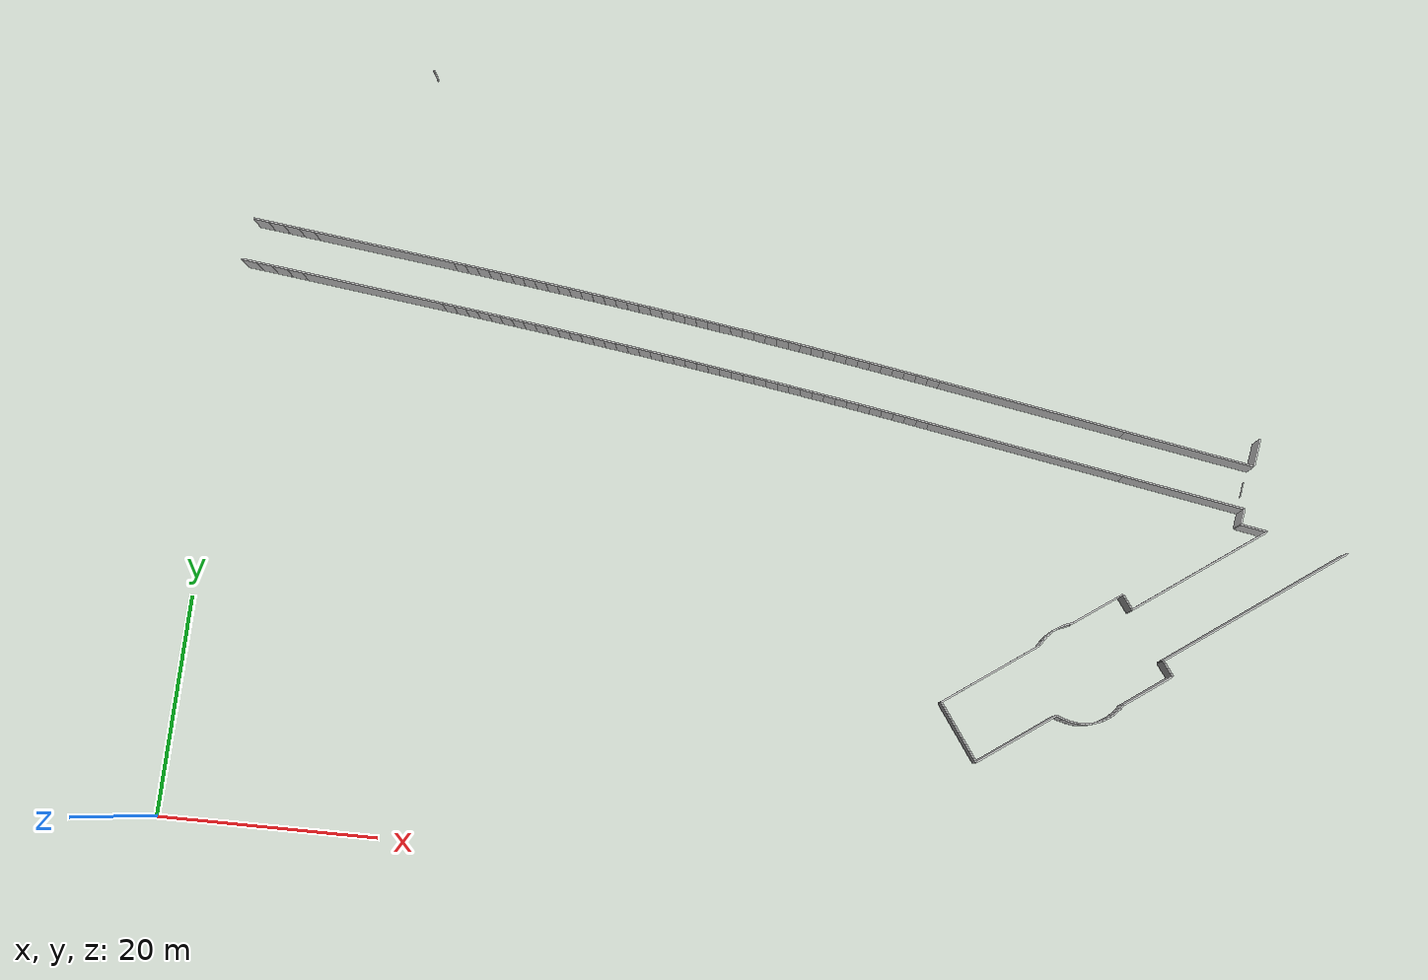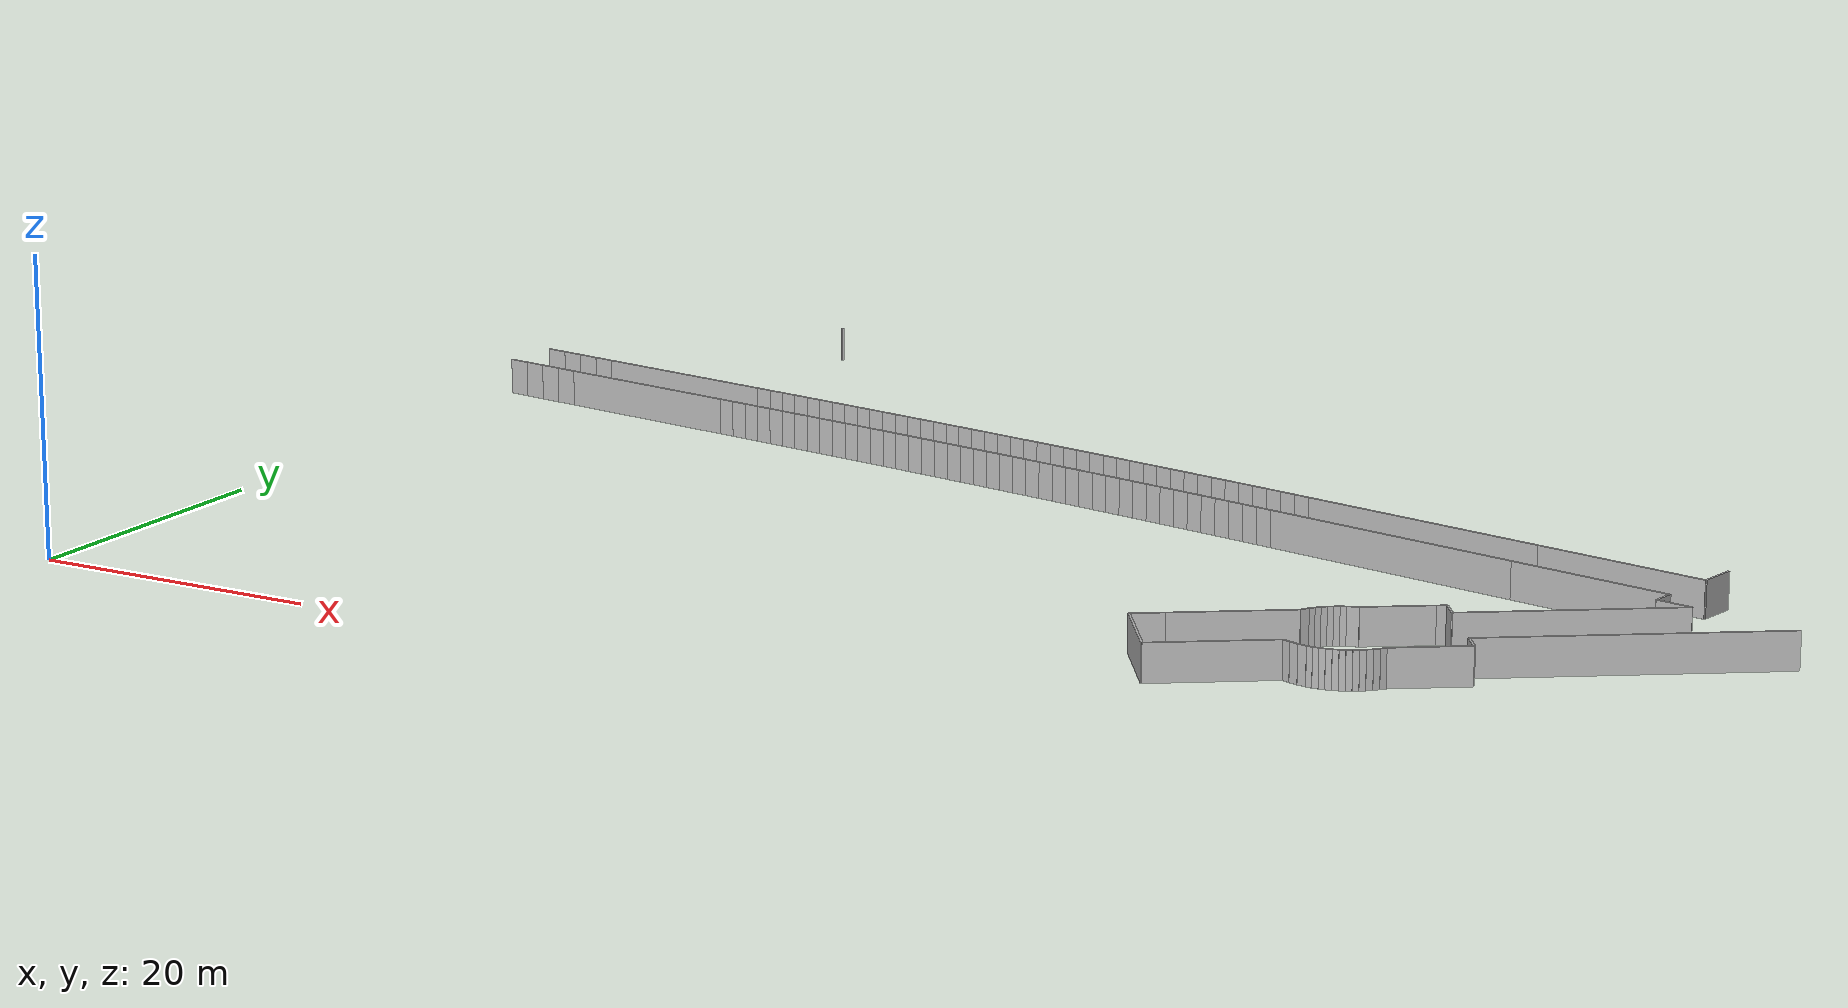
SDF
<sdf version="1.6">
 <model name="sps_1323">
  <static>1</static>
  <allow_auto_disable>0</allow_auto_disable>
  <link name="Wall66">
   <collision name="collision"><geometry><box><size>2.18574 0.15 2.5</size></box></geometry></collision>
   <visual name="visual">
    <geometry><box><size>2.18574 0.15 2.5</size></box></geometry>
    <transparency>0.0</transparency>
   </visual>
   <pose>70.1644 17.2707 1.25 0 -0 0.605917</pose>
  </link>
  <link name="Wall67">
   <collision name="collision"><geometry><box><size>8.16413 0.15 2.5</size></box></geometry></collision>
   <visual name="visual">
    <geometry><box><size>8.16413 0.15 2.5</size></box></geometry>
    <transparency>0.0</transparency>
   </visual>
   <pose>74.4181 20.2179 1.25 0 -0 0.605917</pose>
  </link>
  <link name="Wall68">
   <collision name="collision"><geometry><box><size>2.66015 0.15 2.5</size></box></geometry></collision>
   <visual name="visual">
    <geometry><box><size>2.66015 0.15 2.5</size></box></geometry>
    <transparency>0.0</transparency>
   </visual>
   <pose>96.7183 42.2026 1.25 0 -0 1.39135</pose>
  </link>
  <link name="Wall143">
   <collision name="collision"><geometry><box><size>1.49983 0.15 2.5</size></box></geometry></collision>
   <visual name="visual">
    <geometry><box><size>1.49983 0.15 2.5</size></box></geometry>
    <transparency>0.0</transparency>
   </visual>
   <pose>95.6082 36.0828 1.25 0 -0 1.39168</pose>
  </link>
  <link name="Wall144">
   <collision name="collision"><geometry><box><size>11.4563 0.15 2.5</size></box></geometry></collision>
   <visual name="visual">
    <geometry><box><size>11.4563 0.15 2.5</size></box></geometry>
    <transparency>0.0</transparency>
   </visual>
   <pose>90.1056 37.8428 1.25 0 -0 2.9622</pose>
  </link>
  <link name="Wall145">
   <collision name="collision"><geometry><box><size>18.5098 0.15 2.5</size></box></geometry></collision>
   <visual name="visual">
    <geometry><box><size>18.5098 0.15 2.5</size></box></geometry>
    <transparency>0.0</transparency>
   </visual>
   <pose>75.3631 40.5163 1.25 0 -0 2.9622</pose>
  </link>
  <link name="Wall251">
   <collision name="collision"><geometry><box><size>13.7265 0.15 2.5</size></box></geometry></collision>
   <visual name="visual">
    <geometry><box><size>13.7265 0.15 2.5</size></box></geometry>
    <transparency>0.0</transparency>
   </visual>
   <pose>12.9153 50.2794 1.25 0 0 -0.130471</pose>
  </link>
  <link name="Wall252">
   <collision name="collision"><geometry><box><size>6.10074 0.15 2.5</size></box></geometry></collision>
   <visual name="visual">
    <geometry><box><size>6.10074 0.15 2.5</size></box></geometry>
    <transparency>0.0</transparency>
   </visual>
   <pose>71.0034 14.141 1.25 0 -0 2.17674</pose>
  </link>
  <link name="Wall253">
   <collision name="collision"><geometry><box><size>14.6083 0.15 2.5</size></box></geometry></collision>
   <visual name="visual">
    <geometry><box><size>14.6083 0.15 2.5</size></box></geometry>
    <transparency>0.0</transparency>
   </visual>
   <pose>91.9368 30.7295 1.25 0 -0 0.607546</pose>
  </link>
  <link name="Wall254">
   <collision name="collision"><geometry><box><size>19.912 0.15 2.5</size></box></geometry></collision>
   <visual name="visual">
    <geometry><box><size>19.912 0.15 2.5</size></box></geometry>
    <transparency>0.0</transparency>
   </visual>
   <pose>97.1357 27.8817 1.25 0 0 -2.53463</pose>
  </link>
  <link name="Wall316">
   <collision name="collision"><geometry><box><size>5.1925 0.15 2.5</size></box></geometry></collision>
   <visual name="visual">
    <geometry><box><size>5.1925 0.15 2.5</size></box></geometry>
    <transparency>0.0</transparency>
   </visual>
   <pose>87.7356 19.4094 1.25 0 0 -2.53563</pose>
  </link>
  <link name="Wall317">
   <collision name="collision"><geometry><box><size>2.4993 0.15 2.5</size></box></geometry></collision>
   <visual name="visual">
    <geometry><box><size>2.4993 0.15 2.5</size></box></geometry>
    <transparency>0.0</transparency>
   </visual>
   <pose>96.7042 35.122 1.25 0 -0 2.96229</pose>
  </link>
  <link name="Wall381">
   <collision name="collision"><geometry><box><size>8.38171 0.15 2.5</size></box></geometry></collision>
   <visual name="visual">
    <geometry><box><size>8.38171 0.15 2.5</size></box></geometry>
    <transparency>0.0</transparency>
   </visual>
   <pose>76.1852 14.0209 1.25 0 0 -2.53555</pose>
  </link>
  <link name="Wall382">
   <collision name="collision"><geometry><box><size>17.7611 0.15 2.5</size></box></geometry></collision>
   <visual name="visual">
    <geometry><box><size>17.7611 0.15 2.5</size></box></geometry>
    <transparency>0.0</transparency>
   </visual>
   <pose>75.7314 44.6568 1.25 0 0 -0.179402</pose>
  </link>
  <link name="Wall383">
   <collision name="collision"><geometry><box><size>12.2073 0.15 2.5</size></box></geometry></collision>
   <visual name="visual">
    <geometry><box><size>12.2073 0.15 2.5</size></box></geometry>
    <transparency>0.0</transparency>
   </visual>
   <pose>90.4752 41.983 1.25 0 0 -0.179402</pose>
  </link>
  <link name="Wall475">
   <collision name="collision"><geometry><box><size>1.6001 0.15 2.5</size></box></geometry></collision>
   <visual name="visual">
    <geometry><box><size>1.6001 0.15 2.5</size></box></geometry>
    <transparency>0.0</transparency>
   </visual>
   <pose>85.484 27.2175 1.25 0 0 -0.964808</pose>
  </link>
  <link name="Wall476">
   <collision name="collision"><geometry><box><size>1.60009 0.15 2.5</size></box></geometry></collision>
   <visual name="visual">
    <geometry><box><size>1.60009 0.15 2.5</size></box></geometry>
    <transparency>0.0</transparency>
   </visual>
   <pose>89.4138 21.5456 1.25 0 0 -0.964617</pose>
  </link>
  <link name="Wall566">
   <collision name="collision"><geometry><box><size>13.7167 0.15 2.5</size></box></geometry></collision>
   <visual name="visual">
    <geometry><box><size>13.7167 0.15 2.5</size></box></geometry>
    <transparency>0.0</transparency>
   </visual>
   <pose>13.4524 54.3841 1.25 0 0 -0.130429</pose>
  </link>
  <link name="Wall567">
   <collision name="collision"><geometry><box><size>0.610231 0.15 2.5</size></box></geometry></collision>
   <visual name="visual">
    <geometry><box><size>0.610231 0.15 2.5</size></box></geometry>
    <transparency>0.0</transparency>
   </visual>
   <pose>77.9307 22.8042 1.25 0 0 -2.11204</pose>
  </link>
  <link name="Wall568">
   <collision name="collision"><geometry><box><size>0.774105 0.15 2.5</size></box></geometry></collision>
   <visual name="visual">
    <geometry><box><size>0.774105 0.15 2.5</size></box></geometry>
    <transparency>0.0</transparency>
   </visual>
   <pose>80.2564 24.7115 1.25 0 -0 0.349081</pose>
  </link>
  <link name="Wall569">
   <collision name="collision"><geometry><box><size>4.67159 0.15 2.5</size></box></geometry></collision>
   <visual name="visual">
    <geometry><box><size>4.67159 0.15 2.5</size></box></geometry>
    <transparency>0.0</transparency>
   </visual>
   <pose>82.5448 26.1673 1.25 0 -0 0.602372</pose>
  </link>
  <link name="Wall570">
   <collision name="collision"><geometry><box><size>0.678206 0.15 2.5</size></box></geometry></collision>
   <visual name="visual">
    <geometry><box><size>0.678206 0.15 2.5</size></box></geometry>
    <transparency>0.0</transparency>
   </visual>
   <pose>84.7489 27.6829 1.25 0 -0 0.602372</pose>
  </link>
  <link name="Wall646">
   <collision name="collision"><geometry><box><size>0.100699 0.15 2.5</size></box></geometry></collision>
   <visual name="visual">
    <geometry><box><size>0.100699 0.15 2.5</size></box></geometry>
    <transparency>0.0</transparency>
   </visual>
   <pose>15.8079 72.6316 1.25 0 -0 2.34205</pose>
  </link>
  <link name="Wall2821">
   <collision name="collision"><geometry><box><size>1.49673 0.15 2.5</size></box></geometry></collision>
   <visual name="visual">
    <geometry><box><size>1.49673 0.15 2.5</size></box></geometry>
    <transparency>0.0</transparency>
   </visual>
   <pose>5.36843 51.2697 1.25 0 -0 3.0111</pose>
  </link>
  <link name="Wall2822">
   <collision name="collision"><geometry><box><size>1.4964 0.15 2.5</size></box></geometry></collision>
   <visual name="visual">
    <geometry><box><size>1.4964 0.15 2.5</size></box></geometry>
    <transparency>0.0</transparency>
   </visual>
   <pose>3.88445 51.4634 1.25 0 -0 3.01251</pose>
  </link>
  <link name="Wall2823">
   <collision name="collision"><geometry><box><size>1.49657 0.15 2.5</size></box></geometry></collision>
   <visual name="visual">
    <geometry><box><size>1.49657 0.15 2.5</size></box></geometry>
    <transparency>0.0</transparency>
   </visual>
   <pose>2.40026 51.6548 1.25 0 -0 3.01417</pose>
  </link>
  <link name="Wall2824">
   <collision name="collision"><geometry><box><size>1.49637 0.15 2.5</size></box></geometry></collision>
   <visual name="visual">
    <geometry><box><size>1.49637 0.15 2.5</size></box></geometry>
    <transparency>0.0</transparency>
   </visual>
   <pose>0.915763 51.8437 1.25 0 -0 3.01588</pose>
  </link>
  <link name="Wall3459">
   <collision name="collision"><geometry><box><size>1.12144 0.15 2.5</size></box></geometry></collision>
   <visual name="visual">
    <geometry><box><size>1.12144 0.15 2.5</size></box></geometry>
    <transparency>0.0</transparency>
   </visual>
   <pose>65.7049 42.2672 1.25 0 -0 2.96317</pose>
  </link>
  <link name="Wall3460">
   <collision name="collision"><geometry><box><size>1.12127 0.15 2.5</size></box></geometry></collision>
   <visual name="visual">
    <geometry><box><size>1.12127 0.15 2.5</size></box></geometry>
    <transparency>0.0</transparency>
   </visual>
   <pose>64.6012 42.4654 1.25 0 -0 2.96463</pose>
  </link>
  <link name="Wall3461">
   <collision name="collision"><geometry><box><size>1.1213 0.15 2.5</size></box></geometry></collision>
   <visual name="visual">
    <geometry><box><size>1.1213 0.15 2.5</size></box></geometry>
    <transparency>0.0</transparency>
   </visual>
   <pose>63.4973 42.6622 1.25 0 -0 2.96574</pose>
  </link>
  <link name="Wall3462">
   <collision name="collision"><geometry><box><size>1.12152 0.15 2.5</size></box></geometry></collision>
   <visual name="visual">
    <geometry><box><size>1.12152 0.15 2.5</size></box></geometry>
    <transparency>0.0</transparency>
   </visual>
   <pose>62.3931 42.8578 1.25 0 -0 2.96683</pose>
  </link>
  <link name="Wall3463">
   <collision name="collision"><geometry><box><size>1.12145 0.15 2.5</size></box></geometry></collision>
   <visual name="visual">
    <geometry><box><size>1.12145 0.15 2.5</size></box></geometry>
    <transparency>0.0</transparency>
   </visual>
   <pose>61.2885 43.0521 1.25 0 -0 2.96809</pose>
  </link>
  <link name="Wall3464">
   <collision name="collision"><geometry><box><size>1.12157 0.15 2.5</size></box></geometry></collision>
   <visual name="visual">
    <geometry><box><size>1.12157 0.15 2.5</size></box></geometry>
    <transparency>0.0</transparency>
   </visual>
   <pose>60.1837 43.245 1.25 0 -0 2.96938</pose>
  </link>
  <link name="Wall3465">
   <collision name="collision"><geometry><box><size>1.12133 0.15 2.5</size></box></geometry></collision>
   <visual name="visual">
    <geometry><box><size>1.12133 0.15 2.5</size></box></geometry>
    <transparency>0.0</transparency>
   </visual>
   <pose>59.0788 43.4365 1.25 0 -0 2.97061</pose>
  </link>
  <link name="Wall3466">
   <collision name="collision"><geometry><box><size>1.12141 0.15 2.5</size></box></geometry></collision>
   <visual name="visual">
    <geometry><box><size>1.12141 0.15 2.5</size></box></geometry>
    <transparency>0.0</transparency>
   </visual>
   <pose>57.9737 43.6268 1.25 0 -0 2.9715</pose>
  </link>
  <link name="Wall3467">
   <collision name="collision"><geometry><box><size>1.12131 0.15 2.5</size></box></geometry></collision>
   <visual name="visual">
    <geometry><box><size>1.12131 0.15 2.5</size></box></geometry>
    <transparency>0.0</transparency>
   </visual>
   <pose>56.8683 43.8158 1.25 0 -0 2.97298</pose>
  </link>
  <link name="Wall3468">
   <collision name="collision"><geometry><box><size>1.1213 0.15 2.5</size></box></geometry></collision>
   <visual name="visual">
    <geometry><box><size>1.1213 0.15 2.5</size></box></geometry>
    <transparency>0.0</transparency>
   </visual>
   <pose>55.7628 44.0034 1.25 0 -0 2.97403</pose>
  </link>
  <link name="Wall3469">
   <collision name="collision"><geometry><box><size>1.12124 0.15 2.5</size></box></geometry></collision>
   <visual name="visual">
    <geometry><box><size>1.12124 0.15 2.5</size></box></geometry>
    <transparency>0.0</transparency>
   </visual>
   <pose>54.6572 44.1897 1.25 0 -0 2.97529</pose>
  </link>
  <link name="Wall3470">
   <collision name="collision"><geometry><box><size>1.12146 0.15 2.5</size></box></geometry></collision>
   <visual name="visual">
    <geometry><box><size>1.12146 0.15 2.5</size></box></geometry>
    <transparency>0.0</transparency>
   </visual>
   <pose>53.5512 44.3747 1.25 0 -0 2.97643</pose>
  </link>
  <link name="Wall3471">
   <collision name="collision"><geometry><box><size>1.12142 0.15 2.5</size></box></geometry></collision>
   <visual name="visual">
    <geometry><box><size>1.12142 0.15 2.5</size></box></geometry>
    <transparency>0.0</transparency>
   </visual>
   <pose>52.4449 44.5584 1.25 0 -0 2.97763</pose>
  </link>
  <link name="Wall3472">
   <collision name="collision"><geometry><box><size>1.12128 0.15 2.5</size></box></geometry></collision>
   <visual name="visual">
    <geometry><box><size>1.12128 0.15 2.5</size></box></geometry>
    <transparency>0.0</transparency>
   </visual>
   <pose>51.3385 44.7408 1.25 0 -0 2.97877</pose>
  </link>
  <link name="Wall3473">
   <collision name="collision"><geometry><box><size>1.12142 0.15 2.5</size></box></geometry></collision>
   <visual name="visual">
    <geometry><box><size>1.12142 0.15 2.5</size></box></geometry>
    <transparency>0.0</transparency>
   </visual>
   <pose>50.2318 44.9219 1.25 0 -0 2.98001</pose>
  </link>
  <link name="Wall3474">
   <collision name="collision"><geometry><box><size>1.12141 0.15 2.5</size></box></geometry></collision>
   <visual name="visual">
    <geometry><box><size>1.12141 0.15 2.5</size></box></geometry>
    <transparency>0.0</transparency>
   </visual>
   <pose>49.1249 45.1017 1.25 0 -0 2.98111</pose>
  </link>
  <link name="Wall3475">
   <collision name="collision"><geometry><box><size>1.12136 0.15 2.5</size></box></geometry></collision>
   <visual name="visual">
    <geometry><box><size>1.12136 0.15 2.5</size></box></geometry>
    <transparency>0.0</transparency>
   </visual>
   <pose>48.0178 45.2802 1.25 0 -0 2.98237</pose>
  </link>
  <link name="Wall3476">
   <collision name="collision"><geometry><box><size>1.12138 0.15 2.5</size></box></geometry></collision>
   <visual name="visual">
    <geometry><box><size>1.12138 0.15 2.5</size></box></geometry>
    <transparency>0.0</transparency>
   </visual>
   <pose>46.9105 45.4573 1.25 0 -0 2.98364</pose>
  </link>
  <link name="Wall3477">
   <collision name="collision"><geometry><box><size>1.12138 0.15 2.5</size></box></geometry></collision>
   <visual name="visual">
    <geometry><box><size>1.12138 0.15 2.5</size></box></geometry>
    <transparency>0.0</transparency>
   </visual>
   <pose>45.803 45.6331 1.25 0 -0 2.98469</pose>
  </link>
  <link name="Wall3478">
   <collision name="collision"><geometry><box><size>1.12136 0.15 2.5</size></box></geometry></collision>
   <visual name="visual">
    <geometry><box><size>1.12136 0.15 2.5</size></box></geometry>
    <transparency>0.0</transparency>
   </visual>
   <pose>44.6953 45.8077 1.25 0 -0 2.98584</pose>
  </link>
  <link name="Wall3479">
   <collision name="collision"><geometry><box><size>1.12131 0.15 2.5</size></box></geometry></collision>
   <visual name="visual">
    <geometry><box><size>1.12131 0.15 2.5</size></box></geometry>
    <transparency>0.0</transparency>
   </visual>
   <pose>43.5875 45.9809 1.25 0 -0 2.98721</pose>
  </link>
  <link name="Wall3480">
   <collision name="collision"><geometry><box><size>1.12139 0.15 2.5</size></box></geometry></collision>
   <visual name="visual">
    <geometry><box><size>1.12139 0.15 2.5</size></box></geometry>
    <transparency>0.0</transparency>
   </visual>
   <pose>42.4794 46.1528 1.25 0 -0 2.98816</pose>
  </link>
  <link name="Wall3481">
   <collision name="collision"><geometry><box><size>1.12133 0.15 2.5</size></box></geometry></collision>
   <visual name="visual">
    <geometry><box><size>1.12133 0.15 2.5</size></box></geometry>
    <transparency>0.0</transparency>
   </visual>
   <pose>41.3711 46.3234 1.25 0 -0 2.98958</pose>
  </link>
  <link name="Wall3482">
   <collision name="collision"><geometry><box><size>1.12134 0.15 2.5</size></box></geometry></collision>
   <visual name="visual">
    <geometry><box><size>1.12134 0.15 2.5</size></box></geometry>
    <transparency>0.0</transparency>
   </visual>
   <pose>40.2626 46.4926 1.25 0 -0 2.99063</pose>
  </link>
  <link name="Wall3483">
   <collision name="collision"><geometry><box><size>1.12157 0.15 2.5</size></box></geometry></collision>
   <visual name="visual">
    <geometry><box><size>1.12157 0.15 2.5</size></box></geometry>
    <transparency>0.0</transparency>
   </visual>
   <pose>39.1538 46.6606 1.25 0 -0 2.99181</pose>
  </link>
  <link name="Wall3484">
   <collision name="collision"><geometry><box><size>1.12137 0.15 2.5</size></box></geometry></collision>
   <visual name="visual">
    <geometry><box><size>1.12137 0.15 2.5</size></box></geometry>
    <transparency>0.0</transparency>
   </visual>
   <pose>38.0448 46.8273 1.25 0 -0 2.993</pose>
  </link>
  <link name="Wall3485">
   <collision name="collision"><geometry><box><size>1.12134 0.15 2.5</size></box></geometry></collision>
   <visual name="visual">
    <geometry><box><size>1.12134 0.15 2.5</size></box></geometry>
    <transparency>0.0</transparency>
   </visual>
   <pose>36.9357 46.9926 1.25 0 -0 2.99426</pose>
  </link>
  <link name="Wall3486">
   <collision name="collision"><geometry><box><size>1.1214 0.15 2.5</size></box></geometry></collision>
   <visual name="visual">
    <geometry><box><size>1.1214 0.15 2.5</size></box></geometry>
    <transparency>0.0</transparency>
   </visual>
   <pose>35.8263 47.1566 1.25 0 -0 2.99537</pose>
  </link>
  <link name="Wall3487">
   <collision name="collision"><geometry><box><size>1.12132 0.15 2.5</size></box></geometry></collision>
   <visual name="visual">
    <geometry><box><size>1.12132 0.15 2.5</size></box></geometry>
    <transparency>0.0</transparency>
   </visual>
   <pose>34.7168 47.3193 1.25 0 -0 2.99662</pose>
  </link>
  <link name="Wall3488">
   <collision name="collision"><geometry><box><size>1.12136 0.15 2.5</size></box></geometry></collision>
   <visual name="visual">
    <geometry><box><size>1.12136 0.15 2.5</size></box></geometry>
    <transparency>0.0</transparency>
   </visual>
   <pose>33.6072 47.4806 1.25 0 -0 2.99789</pose>
  </link>
  <link name="Wall3489">
   <collision name="collision"><geometry><box><size>1.12164 0.15 2.5</size></box></geometry></collision>
   <visual name="visual">
    <geometry><box><size>1.12164 0.15 2.5</size></box></geometry>
    <transparency>0.0</transparency>
   </visual>
   <pose>32.4972 47.6407 1.25 0 -0 2.99881</pose>
  </link>
  <link name="Wall3490">
   <collision name="collision"><geometry><box><size>1.12118 0.15 2.5</size></box></geometry></collision>
   <visual name="visual">
    <geometry><box><size>1.12118 0.15 2.5</size></box></geometry>
    <transparency>0.0</transparency>
   </visual>
   <pose>31.387 47.7995 1.25 0 -0 3.00018</pose>
  </link>
  <link name="Wall3491">
   <collision name="collision"><geometry><box><size>1.1214 0.15 2.5</size></box></geometry></collision>
   <visual name="visual">
    <geometry><box><size>1.1214 0.15 2.5</size></box></geometry>
    <transparency>0.0</transparency>
   </visual>
   <pose>30.2768 47.9568 1.25 0 -0 3.00147</pose>
  </link>
  <link name="Wall3492">
   <collision name="collision"><geometry><box><size>1.12144 0.15 2.5</size></box></geometry></collision>
   <visual name="visual">
    <geometry><box><size>1.12144 0.15 2.5</size></box></geometry>
    <transparency>0.0</transparency>
   </visual>
   <pose>29.1663 48.1129 1.25 0 -0 3.00241</pose>
  </link>
  <link name="Wall3493">
   <collision name="collision"><geometry><box><size>1.1214 0.15 2.5</size></box></geometry></collision>
   <visual name="visual">
    <geometry><box><size>1.1214 0.15 2.5</size></box></geometry>
    <transparency>0.0</transparency>
   </visual>
   <pose>28.0557 48.2677 1.25 0 -0 3.00384</pose>
  </link>
  <link name="Wall3494">
   <collision name="collision"><geometry><box><size>1.12149 0.15 2.5</size></box></geometry></collision>
   <visual name="visual">
    <geometry><box><size>1.12149 0.15 2.5</size></box></geometry>
    <transparency>0.0</transparency>
   </visual>
   <pose>26.9448 48.4211 1.25 0 -0 3.00489</pose>
  </link>
  <link name="Wall3495">
   <collision name="collision"><geometry><box><size>1.12123 0.15 2.5</size></box></geometry></collision>
   <visual name="visual">
    <geometry><box><size>1.12123 0.15 2.5</size></box></geometry>
    <transparency>0.0</transparency>
   </visual>
   <pose>25.8338 48.5732 1.25 0 -0 3.00618</pose>
  </link>
  <link name="Wall3496">
   <collision name="collision"><geometry><box><size>1.12155 0.15 2.5</size></box></geometry></collision>
   <visual name="visual">
    <geometry><box><size>1.12155 0.15 2.5</size></box></geometry>
    <transparency>0.0</transparency>
   </visual>
   <pose>24.7226 48.724 1.25 0 -0 3.00726</pose>
  </link>
  <link name="Wall3497">
   <collision name="collision"><geometry><box><size>1.12131 0.15 2.5</size></box></geometry></collision>
   <visual name="visual">
    <geometry><box><size>1.12131 0.15 2.5</size></box></geometry>
    <transparency>0.0</transparency>
   </visual>
   <pose>23.6111 48.8735 1.25 0 -0 3.00849</pose>
  </link>
  <link name="Wall3498">
   <collision name="collision"><geometry><box><size>1.1213 0.15 2.5</size></box></geometry></collision>
   <visual name="visual">
    <geometry><box><size>1.1213 0.15 2.5</size></box></geometry>
    <transparency>0.0</transparency>
   </visual>
   <pose>22.4997 49.0216 1.25 0 -0 3.00976</pose>
  </link>
  <link name="Wall3499">
   <collision name="collision"><geometry><box><size>1.1212 0.15 2.5</size></box></geometry></collision>
   <visual name="visual">
    <geometry><box><size>1.1212 0.15 2.5</size></box></geometry>
    <transparency>0.0</transparency>
   </visual>
   <pose>21.3881 49.1684 1.25 0 -0 3.01084</pose>
  </link>
  <link name="Wall3500">
   <collision name="collision"><geometry><box><size>1.12142 0.15 2.5</size></box></geometry></collision>
   <visual name="visual">
    <geometry><box><size>1.12142 0.15 2.5</size></box></geometry>
    <transparency>0.0</transparency>
   </visual>
   <pose>20.2762 49.314 1.25 0 -0 3.01191</pose>
  </link>
  <link name="Wall5432">
   <collision name="collision"><geometry><box><size>1.50298 0.15 2.5</size></box></geometry></collision>
   <visual name="visual">
    <geometry><box><size>1.50298 0.15 2.5</size></box></geometry>
    <transparency>0.0</transparency>
   </visual>
   <pose>5.90716 55.374 1.25 0 -0 3.01095</pose>
  </link>
  <link name="Wall5433">
   <collision name="collision"><geometry><box><size>1.5031 0.15 2.5</size></box></geometry></collision>
   <visual name="visual">
    <geometry><box><size>1.5031 0.15 2.5</size></box></geometry>
    <transparency>0.0</transparency>
   </visual>
   <pose>4.41677 55.5686 1.25 0 -0 3.01255</pose>
  </link>
  <link name="Wall5434">
   <collision name="collision"><geometry><box><size>1.50321 0.15 2.5</size></box></geometry></collision>
   <visual name="visual">
    <geometry><box><size>1.50321 0.15 2.5</size></box></geometry>
    <transparency>0.0</transparency>
   </visual>
   <pose>2.92596 55.7608 1.25 0 -0 3.0142</pose>
  </link>
  <link name="Wall5435">
   <collision name="collision"><geometry><box><size>1.50309 0.15 2.5</size></box></geometry></collision>
   <visual name="visual">
    <geometry><box><size>1.50309 0.15 2.5</size></box></geometry>
    <transparency>0.0</transparency>
   </visual>
   <pose>1.43484 55.9506 1.25 0 -0 3.01579</pose>
  </link>
  <link name="Wall7309">
   <collision name="collision"><geometry><box><size>1.12627 0.15 2.5</size></box></geometry></collision>
   <visual name="visual">
    <geometry><box><size>1.12627 0.15 2.5</size></box></geometry>
    <transparency>0.0</transparency>
   </visual>
   <pose>66.4392 46.3414 1.25 0 -0 2.96322</pose>
  </link>
  <link name="Wall7310">
   <collision name="collision"><geometry><box><size>1.12619 0.15 2.5</size></box></geometry></collision>
   <visual name="visual">
    <geometry><box><size>1.12619 0.15 2.5</size></box></geometry>
    <transparency>0.0</transparency>
   </visual>
   <pose>65.3307 46.5405 1.25 0 -0 2.96453</pose>
  </link>
  <link name="Wall7311">
   <collision name="collision"><geometry><box><size>1.12641 0.15 2.5</size></box></geometry></collision>
   <visual name="visual">
    <geometry><box><size>1.12641 0.15 2.5</size></box></geometry>
    <transparency>0.0</transparency>
   </visual>
   <pose>64.2219 46.7383 1.25 0 -0 2.96561</pose>
  </link>
  <link name="Wall7312">
   <collision name="collision"><geometry><box><size>1.12634 0.15 2.5</size></box></geometry></collision>
   <visual name="visual">
    <geometry><box><size>1.12634 0.15 2.5</size></box></geometry>
    <transparency>0.0</transparency>
   </visual>
   <pose>63.1128 46.9348 1.25 0 -0 2.96687</pose>
  </link>
  <link name="Wall7313">
   <collision name="collision"><geometry><box><size>1.12628 0.15 2.5</size></box></geometry></collision>
   <visual name="visual">
    <geometry><box><size>1.12628 0.15 2.5</size></box></geometry>
    <transparency>0.0</transparency>
   </visual>
   <pose>62.0036 47.1299 1.25 0 -0 2.96812</pose>
  </link>
  <link name="Wall7314">
   <collision name="collision"><geometry><box><size>1.1265 0.15 2.5</size></box></geometry></collision>
   <visual name="visual">
    <geometry><box><size>1.1265 0.15 2.5</size></box></geometry>
    <transparency>0.0</transparency>
   </visual>
   <pose>60.894 47.3237 1.25 0 -0 2.9692</pose>
  </link>
  <link name="Wall7315">
   <collision name="collision"><geometry><box><size>1.12625 0.15 2.5</size></box></geometry></collision>
   <visual name="visual">
    <geometry><box><size>1.12625 0.15 2.5</size></box></geometry>
    <transparency>0.0</transparency>
   </visual>
   <pose>59.7842 47.5162 1.25 0 -0 2.97048</pose>
  </link>
  <link name="Wall7316">
   <collision name="collision"><geometry><box><size>1.1262 0.15 2.5</size></box></geometry></collision>
   <visual name="visual">
    <geometry><box><size>1.1262 0.15 2.5</size></box></geometry>
    <transparency>0.0</transparency>
   </visual>
   <pose>58.6743 47.7073 1.25 0 -0 2.97169</pose>
  </link>
  <link name="Wall7317">
   <collision name="collision"><geometry><box><size>1.1262 0.15 2.5</size></box></geometry></collision>
   <visual name="visual">
    <geometry><box><size>1.1262 0.15 2.5</size></box></geometry>
    <transparency>0.0</transparency>
   </visual>
   <pose>57.5642 47.897 1.25 0 -0 2.973</pose>
  </link>
  <link name="Wall7318">
   <collision name="collision"><geometry><box><size>1.12636 0.15 2.5</size></box></geometry></collision>
   <visual name="visual">
    <geometry><box><size>1.12636 0.15 2.5</size></box></geometry>
    <transparency>0.0</transparency>
   </visual>
   <pose>56.4538 48.0854 1.25 0 -0 2.97407</pose>
  </link>
  <link name="Wall7319">
   <collision name="collision"><geometry><box><size>1.12635 0.15 2.5</size></box></geometry></collision>
   <visual name="visual">
    <geometry><box><size>1.12635 0.15 2.5</size></box></geometry>
    <transparency>0.0</transparency>
   </visual>
   <pose>55.3431 48.2726 1.25 0 -0 2.97512</pose>
  </link>
  <link name="Wall7320">
   <collision name="collision"><geometry><box><size>1.12635 0.15 2.5</size></box></geometry></collision>
   <visual name="visual">
    <geometry><box><size>1.12635 0.15 2.5</size></box></geometry>
    <transparency>0.0</transparency>
   </visual>
   <pose>54.2322 48.4585 1.25 0 -0 2.97644</pose>
  </link>
  <link name="Wall7321">
   <collision name="collision"><geometry><box><size>1.12634 0.15 2.5</size></box></geometry></collision>
   <visual name="visual">
    <geometry><box><size>1.12634 0.15 2.5</size></box></geometry>
    <transparency>0.0</transparency>
   </visual>
   <pose>53.1211 48.6431 1.25 0 -0 2.97748</pose>
  </link>
  <link name="Wall7322">
   <collision name="collision"><geometry><box><size>1.12625 0.15 2.5</size></box></geometry></collision>
   <visual name="visual">
    <geometry><box><size>1.12625 0.15 2.5</size></box></geometry>
    <transparency>0.0</transparency>
   </visual>
   <pose>52.0098 48.8263 1.25 0 -0 2.97895</pose>
  </link>
  <link name="Wall7323">
   <collision name="collision"><geometry><box><size>1.12631 0.15 2.5</size></box></geometry></collision>
   <visual name="visual">
    <geometry><box><size>1.12631 0.15 2.5</size></box></geometry>
    <transparency>0.0</transparency>
   </visual>
   <pose>50.8982 49.0081 1.25 0 -0 2.98</pose>
  </link>
  <link name="Wall7324">
   <collision name="collision"><geometry><box><size>1.12647 0.15 2.5</size></box></geometry></collision>
   <visual name="visual">
    <geometry><box><size>1.12647 0.15 2.5</size></box></geometry>
    <transparency>0.0</transparency>
   </visual>
   <pose>49.7864 49.1887 1.25 0 -0 2.98112</pose>
  </link>
  <link name="Wall7325">
   <collision name="collision"><geometry><box><size>1.12625 0.15 2.5</size></box></geometry></collision>
   <visual name="visual">
    <geometry><box><size>1.12625 0.15 2.5</size></box></geometry>
    <transparency>0.0</transparency>
   </visual>
   <pose>48.6744 49.368 1.25 0 -0 2.98235</pose>
  </link>
  <link name="Wall7326">
   <collision name="collision"><geometry><box><size>1.12621 0.15 2.5</size></box></geometry></collision>
   <visual name="visual">
    <geometry><box><size>1.12621 0.15 2.5</size></box></geometry>
    <transparency>0.0</transparency>
   </visual>
   <pose>47.5623 49.5459 1.25 0 -0 2.98361</pose>
  </link>
  <link name="Wall7327">
   <collision name="collision"><geometry><box><size>1.12645 0.15 2.5</size></box></geometry></collision>
   <visual name="visual">
    <geometry><box><size>1.12645 0.15 2.5</size></box></geometry>
    <transparency>0.0</transparency>
   </visual>
   <pose>46.4499 49.7225 1.25 0 -0 2.98468</pose>
  </link>
  <link name="Wall7328">
   <collision name="collision"><geometry><box><size>1.12623 0.15 2.5</size></box></geometry></collision>
   <visual name="visual">
    <geometry><box><size>1.12623 0.15 2.5</size></box></geometry>
    <transparency>0.0</transparency>
   </visual>
   <pose>45.3373 49.8978 1.25 0 -0 2.98591</pose>
  </link>
  <link name="Wall7329">
   <collision name="collision"><geometry><box><size>1.12637 0.15 2.5</size></box></geometry></collision>
   <visual name="visual">
    <geometry><box><size>1.12637 0.15 2.5</size></box></geometry>
    <transparency>0.0</transparency>
   </visual>
   <pose>44.2245 50.0717 1.25 0 -0 2.98725</pose>
  </link>
  <link name="Wall7330">
   <collision name="collision"><geometry><box><size>1.12643 0.15 2.5</size></box></geometry></collision>
   <visual name="visual">
    <geometry><box><size>1.12643 0.15 2.5</size></box></geometry>
    <transparency>0.0</transparency>
   </visual>
   <pose>43.1114 50.2443 1.25 0 -0 2.9883</pose>
  </link>
  <link name="Wall7331">
   <collision name="collision"><geometry><box><size>1.12616 0.15 2.5</size></box></geometry></collision>
   <visual name="visual">
    <geometry><box><size>1.12616 0.15 2.5</size></box></geometry>
    <transparency>0.0</transparency>
   </visual>
   <pose>41.9983 50.4156 1.25 0 -0 2.98952</pose>
  </link>
  <link name="Wall7332">
   <collision name="collision"><geometry><box><size>1.12622 0.15 2.5</size></box></geometry></collision>
   <visual name="visual">
    <geometry><box><size>1.12622 0.15 2.5</size></box></geometry>
    <transparency>0.0</transparency>
   </visual>
   <pose>40.885 50.5856 1.25 0 -0 2.99057</pose>
  </link>
  <link name="Wall7333">
   <collision name="collision"><geometry><box><size>1.12642 0.15 2.5</size></box></geometry></collision>
   <visual name="visual">
    <geometry><box><size>1.12642 0.15 2.5</size></box></geometry>
    <transparency>0.0</transparency>
   </visual>
   <pose>39.7714 50.7543 1.25 0 -0 2.99192</pose>
  </link>
  <link name="Wall7334">
   <collision name="collision"><geometry><box><size>1.12619 0.15 2.5</size></box></geometry></collision>
   <visual name="visual">
    <geometry><box><size>1.12619 0.15 2.5</size></box></geometry>
    <transparency>0.0</transparency>
   </visual>
   <pose>38.6576 50.9217 1.25 0 -0 2.99293</pose>
  </link>
  <link name="Wall7335">
   <collision name="collision"><geometry><box><size>1.12623 0.15 2.5</size></box></geometry></collision>
   <visual name="visual">
    <geometry><box><size>1.12623 0.15 2.5</size></box></geometry>
    <transparency>0.0</transparency>
   </visual>
   <pose>37.5437 51.0878 1.25 0 -0 2.99419</pose>
  </link>
  <link name="Wall7336">
   <collision name="collision"><geometry><box><size>1.12638 0.15 2.5</size></box></geometry></collision>
   <visual name="visual">
    <geometry><box><size>1.12638 0.15 2.5</size></box></geometry>
    <transparency>0.0</transparency>
   </visual>
   <pose>36.4295 51.2525 1.25 0 -0 2.99547</pose>
  </link>
  <link name="Wall7337">
   <collision name="collision"><geometry><box><size>1.12627 0.15 2.5</size></box></geometry></collision>
   <visual name="visual">
    <geometry><box><size>1.12627 0.15 2.5</size></box></geometry>
    <transparency>0.0</transparency>
   </visual>
   <pose>35.3151 51.4159 1.25 0 -0 2.99655</pose>
  </link>
  <link name="Wall7338">
   <collision name="collision"><geometry><box><size>1.12644 0.15 2.5</size></box></geometry></collision>
   <visual name="visual">
    <geometry><box><size>1.12644 0.15 2.5</size></box></geometry>
    <transparency>0.0</transparency>
   </visual>
   <pose>34.2004 51.578 1.25 0 -0 2.99778</pose>
  </link>
  <link name="Wall7339">
   <collision name="collision"><geometry><box><size>1.12641 0.15 2.5</size></box></geometry></collision>
   <visual name="visual">
    <geometry><box><size>1.12641 0.15 2.5</size></box></geometry>
    <transparency>0.0</transparency>
   </visual>
   <pose>33.0855 51.7387 1.25 0 -0 2.99909</pose>
  </link>
  <link name="Wall7340">
   <collision name="collision"><geometry><box><size>1.12624 0.15 2.5</size></box></geometry></collision>
   <visual name="visual">
    <geometry><box><size>1.12624 0.15 2.5</size></box></geometry>
    <transparency>0.0</transparency>
   </visual>
   <pose>31.9705 51.8981 1.25 0 -0 3.00011</pose>
  </link>
  <link name="Wall7341">
   <collision name="collision"><geometry><box><size>1.12625 0.15 2.5</size></box></geometry></collision>
   <visual name="visual">
    <geometry><box><size>1.12625 0.15 2.5</size></box></geometry>
    <transparency>0.0</transparency>
   </visual>
   <pose>30.8555 52.0563 1.25 0 -0 3.00121</pose>
  </link>
  <link name="Wall7342">
   <collision name="collision"><geometry><box><size>1.12627 0.15 2.5</size></box></geometry></collision>
   <visual name="visual">
    <geometry><box><size>1.12627 0.15 2.5</size></box></geometry>
    <transparency>0.0</transparency>
   </visual>
   <pose>29.7402 52.2131 1.25 0 -0 3.00263</pose>
  </link>
  <link name="Wall7343">
   <collision name="collision"><geometry><box><size>1.12629 0.15 2.5</size></box></geometry></collision>
   <visual name="visual">
    <geometry><box><size>1.12629 0.15 2.5</size></box></geometry>
    <transparency>0.0</transparency>
   </visual>
   <pose>28.6247 52.3685 1.25 0 -0 3.00373</pose>
  </link>
  <link name="Wall7344">
   <collision name="collision"><geometry><box><size>1.12628 0.15 2.5</size></box></geometry></collision>
   <visual name="visual">
    <geometry><box><size>1.12628 0.15 2.5</size></box></geometry>
    <transparency>0.0</transparency>
   </visual>
   <pose>27.509 52.5226 1.25 0 -0 3.00493</pose>
  </link>
  <link name="Wall7345">
   <collision name="collision"><geometry><box><size>1.12635 0.15 2.5</size></box></geometry></collision>
   <visual name="visual">
    <geometry><box><size>1.12635 0.15 2.5</size></box></geometry>
    <transparency>0.0</transparency>
   </visual>
   <pose>26.3931 52.6754 1.25 0 -0 3.00609</pose>
  </link>
  <link name="Wall7346">
   <collision name="collision"><geometry><box><size>1.12635 0.15 2.5</size></box></geometry></collision>
   <visual name="visual">
    <geometry><box><size>1.12635 0.15 2.5</size></box></geometry>
    <transparency>0.0</transparency>
   </visual>
   <pose>25.2769 52.8269 1.25 0 -0 3.00729</pose>
  </link>
  <link name="Wall7347">
   <collision name="collision"><geometry><box><size>1.12611 0.15 2.5</size></box></geometry></collision>
   <visual name="visual">
    <geometry><box><size>1.12611 0.15 2.5</size></box></geometry>
    <transparency>0.0</transparency>
   </visual>
   <pose>24.1608 52.977 1.25 0 -0 3.00852</pose>
  </link>
  <link name="Wall7348">
   <collision name="collision"><geometry><box><size>1.12643 0.15 2.5</size></box></geometry></collision>
   <visual name="visual">
    <geometry><box><size>1.12643 0.15 2.5</size></box></geometry>
    <transparency>0.0</transparency>
   </visual>
   <pose>23.0444 53.1258 1.25 0 -0 3.00965</pose>
  </link>
  <link name="Wall7349">
   <collision name="collision"><geometry><box><size>1.12618 0.15 2.5</size></box></geometry></collision>
   <visual name="visual">
    <geometry><box><size>1.12618 0.15 2.5</size></box></geometry>
    <transparency>0.0</transparency>
   </visual>
   <pose>21.9278 53.2733 1.25 0 -0 3.01088</pose>
  </link>
  <link name="Wall7350">
   <collision name="collision"><geometry><box><size>1.12643 0.15 2.5</size></box></geometry></collision>
   <visual name="visual">
    <geometry><box><size>1.12643 0.15 2.5</size></box></geometry>
    <transparency>0.0</transparency>
   </visual>
   <pose>20.811 53.4194 1.25 0 -0 3.01216</pose>
  </link>
  <link name="Wall8234">
   <collision name="collision"><geometry><box><size>0.39704 0.15 2.5</size></box></geometry></collision>
   <visual name="visual">
    <geometry><box><size>0.39704 0.15 2.5</size></box></geometry>
    <transparency>0.0</transparency>
   </visual>
   <pose>79.7165 24.4875 1.25 0 0 -2.66193</pose>
  </link>
  <link name="Wall8235">
   <collision name="collision"><geometry><box><size>0.396899 0.15 2.5</size></box></geometry></collision>
   <visual name="visual">
    <geometry><box><size>0.396899 0.15 2.5</size></box></geometry>
    <transparency>0.0</transparency>
   </visual>
   <pose>79.373 24.2893 1.25 0 0 -2.57453</pose>
  </link>
  <link name="Wall8236">
   <collision name="collision"><geometry><box><size>0.396971 0.15 2.5</size></box></geometry></collision>
   <visual name="visual">
    <geometry><box><size>0.396971 0.15 2.5</size></box></geometry>
    <transparency>0.0</transparency>
   </visual>
   <pose>79.0481 24.0619 1.25 0 0 -2.48736</pose>
  </link>
  <link name="Wall8237">
   <collision name="collision"><geometry><box><size>0.396926 0.15 2.5</size></box></geometry></collision>
   <visual name="visual">
    <geometry><box><size>0.396926 0.15 2.5</size></box></geometry>
    <transparency>0.0</transparency>
   </visual>
   <pose>78.7443 23.8071 1.25 0 0 -2.40035</pose>
  </link>
  <link name="Wall8238">
   <collision name="collision"><geometry><box><size>0.39708 0.15 2.5</size></box></geometry></collision>
   <visual name="visual">
    <geometry><box><size>0.39708 0.15 2.5</size></box></geometry>
    <transparency>0.0</transparency>
   </visual>
   <pose>78.4636 23.5268 1.25 0 0 -2.31314</pose>
  </link>
  <link name="Wall8239">
   <collision name="collision"><geometry><box><size>0.396826 0.15 2.5</size></box></geometry></collision>
   <visual name="visual">
    <geometry><box><size>0.396826 0.15 2.5</size></box></geometry>
    <transparency>0.0</transparency>
   </visual>
   <pose>78.2086 23.2231 1.25 0 0 -2.22531</pose>
  </link>
  <link name="Wall9094">
   <collision name="collision"><geometry><box><size>0.618748 0.15 2.5</size></box></geometry></collision>
   <visual name="visual">
    <geometry><box><size>0.618748 0.15 2.5</size></box></geometry>
    <transparency>0.0</transparency>
   </visual>
   <pose>79.9199 16.3011 1.25 0 0 -0.353137</pose>
  </link>
  <link name="Wall9095">
   <collision name="collision"><geometry><box><size>0.618919 0.15 2.5</size></box></geometry></collision>
   <visual name="visual">
    <geometry><box><size>0.618919 0.15 2.5</size></box></geometry>
    <transparency>0.0</transparency>
   </visual>
   <pose>80.5088 16.1129 1.25 0 0 -0.265526</pose>
  </link>
  <link name="Wall9096">
   <collision name="collision"><geometry><box><size>0.618796 0.15 2.5</size></box></geometry></collision>
   <visual name="visual">
    <geometry><box><size>0.618796 0.15 2.5</size></box></geometry>
    <transparency>0.0</transparency>
   </visual>
   <pose>81.112 15.9769 1.25 0 0 -0.178089</pose>
  </link>
  <link name="Wall9097">
   <collision name="collision"><geometry><box><size>0.396988 0.15 2.5</size></box></geometry></collision>
   <visual name="visual">
    <geometry><box><size>0.396988 0.15 2.5</size></box></geometry>
    <transparency>0.0</transparency>
   </visual>
   <pose>81.6148 15.9134 1.25 0 0 -0.0438316</pose>
  </link>
  <link name="Wall9098">
   <collision name="collision"><geometry><box><size>0.396736 0.15 2.5</size></box></geometry></collision>
   <visual name="visual">
    <geometry><box><size>0.396736 0.15 2.5</size></box></geometry>
    <transparency>0.0</transparency>
   </visual>
   <pose>82.0113 15.9133 1.25 0 -0 0.0433974</pose>
  </link>
  <link name="Wall9099">
   <collision name="collision"><geometry><box><size>0.397012 0.15 2.5</size></box></geometry></collision>
   <visual name="visual">
    <geometry><box><size>0.397012 0.15 2.5</size></box></geometry>
    <transparency>0.0</transparency>
   </visual>
   <pose>82.4062 15.9478 1.25 0 -0 0.130896</pose>
  </link>
  <link name="Wall9100">
   <collision name="collision"><geometry><box><size>0.397006 0.15 2.5</size></box></geometry></collision>
   <visual name="visual">
    <geometry><box><size>0.397006 0.15 2.5</size></box></geometry>
    <transparency>0.0</transparency>
   </visual>
   <pose>82.7969 16.0166 1.25 0 -0 0.217718</pose>
  </link>
  <link name="Wall9101">
   <collision name="collision"><geometry><box><size>0.396923 0.15 2.5</size></box></geometry></collision>
   <visual name="visual">
    <geometry><box><size>0.396923 0.15 2.5</size></box></geometry>
    <transparency>0.0</transparency>
   </visual>
   <pose>83.18 16.1191 1.25 0 -0 0.305022</pose>
  </link>
  <link name="Wall9102">
   <collision name="collision"><geometry><box><size>0.396955 0.15 2.5</size></box></geometry></collision>
   <visual name="visual">
    <geometry><box><size>0.396955 0.15 2.5</size></box></geometry>
    <transparency>0.0</transparency>
   </visual>
   <pose>83.5527 16.2546 1.25 0 -0 0.392556</pose>
  </link>
  <link name="Wall9103">
   <collision name="collision"><geometry><box><size>0.397012 0.15 2.5</size></box></geometry></collision>
   <visual name="visual">
    <geometry><box><size>0.397012 0.15 2.5</size></box></geometry>
    <transparency>0.0</transparency>
   </visual>
   <pose>83.9122 16.4221 1.25 0 -0 0.47953</pose>
  </link>
  <link name="Wall9104">
   <collision name="collision"><geometry><box><size>0.396899 0.15 2.5</size></box></geometry></collision>
   <visual name="visual">
    <geometry><box><size>0.396899 0.15 2.5</size></box></geometry>
    <transparency>0.0</transparency>
   </visual>
   <pose>84.2557 16.6203 1.25 0 -0 0.567059</pose>
  </link>
  <link name="Wall9105">
   <collision name="collision"><geometry><box><size>0.39686 0.15 2.5</size></box></geometry></collision>
   <visual name="visual">
    <geometry><box><size>0.39686 0.15 2.5</size></box></geometry>
    <transparency>0.0</transparency>
   </visual>
   <pose>84.5806 16.8476 1.25 0 -0 0.653867</pose>
  </link>
  <link name="Wall9106">
   <collision name="collision"><geometry><box><size>0.432295 0.15 2.5</size></box></geometry></collision>
   <visual name="visual">
    <geometry><box><size>0.432295 0.15 2.5</size></box></geometry>
    <transparency>0.0</transparency>
   </visual>
   <pose>84.8959 17.116 1.25 0 -0 0.752347</pose>
  </link>
  <link name="Wall9107">
   <collision name="collision"><geometry><box><size>0.432086 0.15 2.5</size></box></geometry></collision>
   <visual name="visual">
    <geometry><box><size>0.432086 0.15 2.5</size></box></geometry>
    <transparency>0.0</transparency>
   </visual>
   <pose>85.198 17.4245 1.25 0 -0 0.839462</pose>
  </link>
  <link name="Wall9108">
   <collision name="collision"><geometry><box><size>0.431958 0.15 2.5</size></box></geometry></collision>
   <visual name="visual">
    <geometry><box><size>0.431958 0.15 2.5</size></box></geometry>
    <transparency>0.0</transparency>
   </visual>
   <pose>85.4719 17.758 1.25 0 -0 0.926645</pose>
  </link>
  <model name="gate_1">
   <static>1</static>
   <pose>96 39 0 0 0 1.3914</pose>
   <link name="link">
    <collision name="collision"><geometry><mesh><uri>model://gate/gate.dae</uri></mesh></geometry></collision>
    <visual name="visual"><geometry><mesh><uri>model://gate/gate.dae</uri></mesh></geometry></visual>
   </link>
  </model>
 </model>
</sdf>
